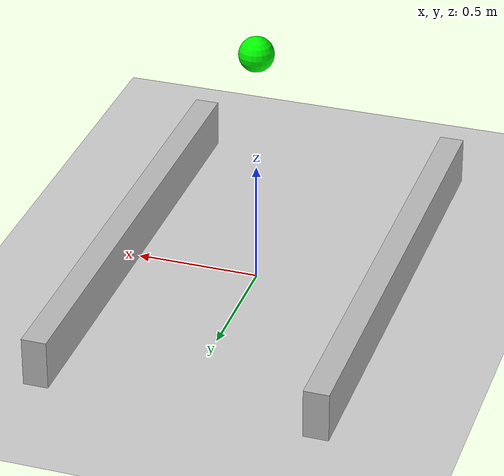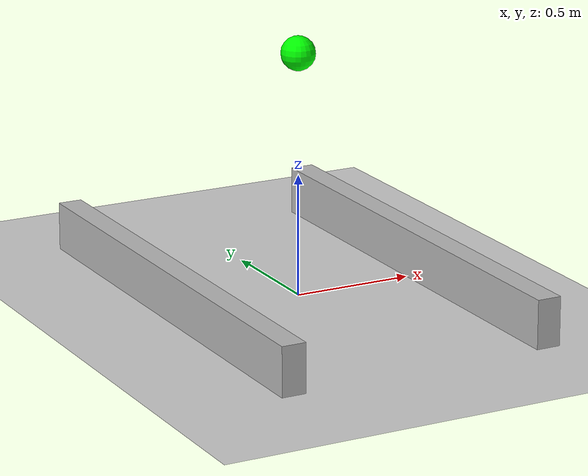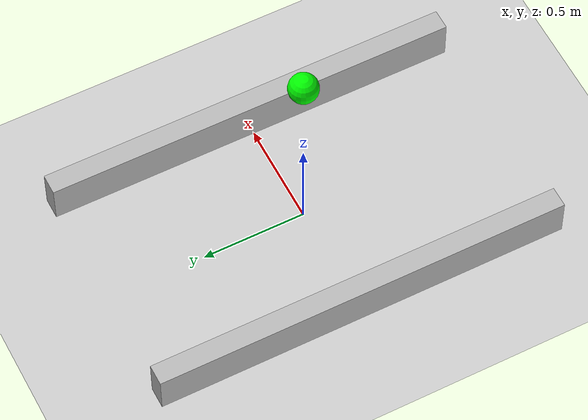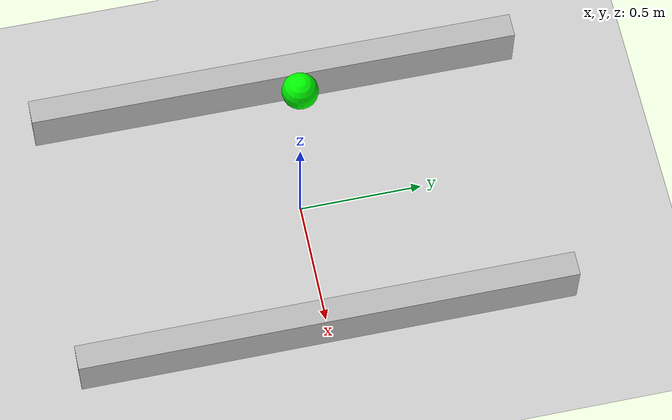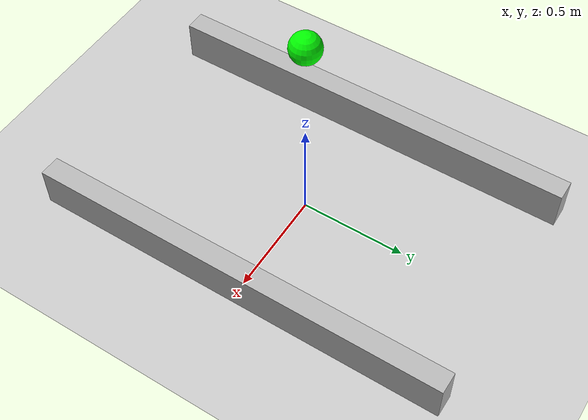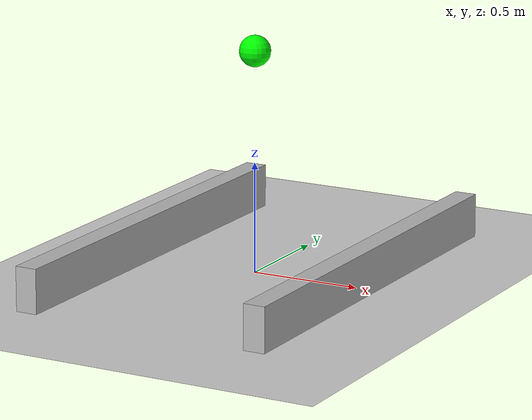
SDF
<?xml version="1.0"?>
<sdf version="1.4">
  <world name="robomaster_sim">
    <include>
      <uri>model://ground_plane</uri>
    </include>
    <include>
      <uri>model://walls</uri>
    </include>
    <include>
      <uri>model://ball</uri>
    </include>
    <include>
      <uri>model://sun</uri>
    </include>
    <plugin name="gazebo_ros_state" filename="libgazebo_ros_state.so">
      <ros>
        <namespace>/gazebo</namespace>
      </ros>
      <update_rate>50</update_rate>
    </plugin>
  </world>
</sdf>

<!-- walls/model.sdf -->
<sdf version='1.4'>
  <model name="walls">
    <pose>0 0 0.1 0 0 0</pose>
    <static>true</static>
    <link name="left">
      <pose>-0.55 0 0 0 0 0</pose>
      <collision name="collision_left">
        <geometry>
          <box>
            <size>0.1 2 0.2</size>
          </box>
        </geometry>
      </collision>
      <visual name="visual_left">
        <geometry>
          <box>
            <size>0.1 2 0.2</size>
          </box>
        </geometry>
      </visual>
    </link>
    <link name="right">
      <pose>0.55 0 0 0 0 0</pose>
      <collision name="collision_right">
        <geometry>
          <box>
            <size>0.1 2 0.2</size>
          </box>
        </geometry>
      </collision>
      <visual name="visual_right">
        <geometry>
          <box>
            <size>0.1 2 0.2</size>
          </box>
        </geometry>
      </visual>
    </link>
  </model>
</sdf>

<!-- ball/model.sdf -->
<sdf version='1.4'>
  <model name='ball'>
    <pose>0 0 1 0 0 0</pose>
    <static>false</static>
    <link name='ball_link'>
      <collision name='ball_collision'>
        <geometry>
          <sphere>
            <radius>0.07</radius>
          </sphere>
        </geometry>
        <surface>
          <friction>
            <ode>
              <mu>1.0</mu>
              <mu2>1.0</mu2>
            </ode>
          </friction>
          <contact>
            <ode>
              <soft_red_limit>0.001</soft_red_limit>
              <soft_erp>0.7</soft_erp>
            </ode>
          </contact>
        </surface>
      </collision>
      <visual name='ball_visual'>
        <geometry>
          <sphere>
            <radius>0.07</radius>
          </sphere>
        </geometry>
        <material>
          <ambient>0 1 0 1</ambient>
          <diffuse>0 1 0 1</diffuse>
          <specular>0 0 0 1</specular>
          <emissive>0 0 0 1</emissive>
        </material>
      </visual>
      <inertial>
        <mass>0.45</mass>
        <inertia>
          <ixx>0.00025</ixx>
          <ixy>0.0</ixy>
          <ixz>0.0</ixz>
          <iyy>0.00025</iyy>
          <iyz>0.0</iyz>
          <izz>0.00025</izz>
        </inertia>
        <stiffness>10000.0</stiffness>
        <damping_ratio>0.7</damping_ratio>
      </inertial>
      <physics name="default" type="ode">
        <max_step_size>0.01</max_step_size>
        <real_time_factor>1.0</real_time_factor>
        <real_time_update_rate>100.0</real_time_update_rate>
        <gravity>0 -9.81 0</gravity>
      </physics>
    </link>
  </model>
</sdf>
